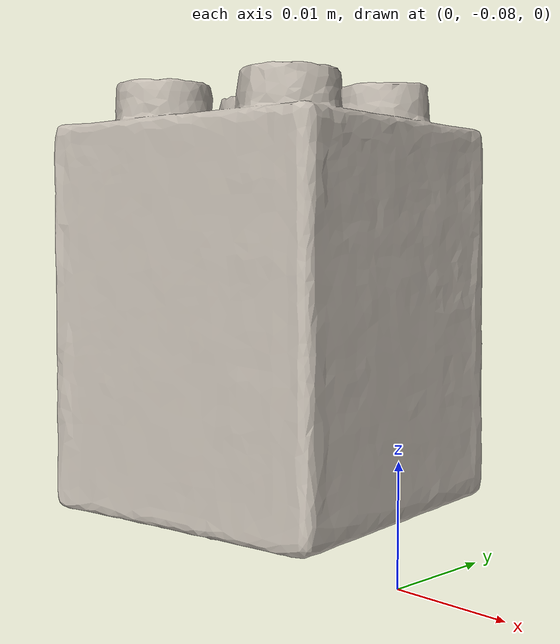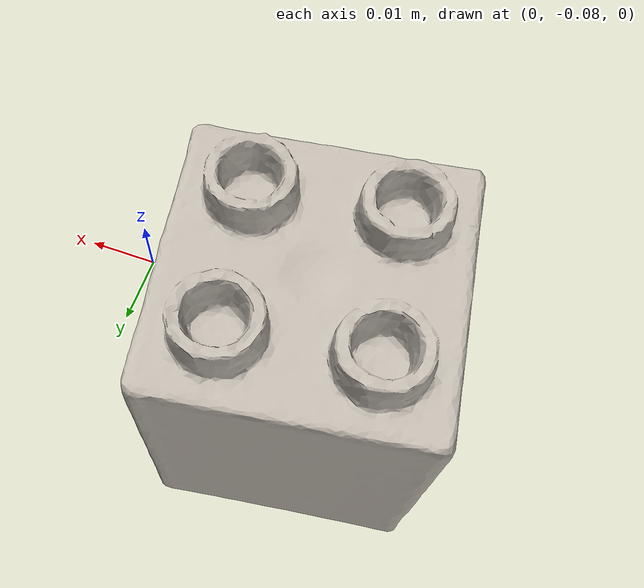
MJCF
<mujoco model="lego_f">
  <compiler angle="radian" meshdir="assets" texturedir="assets"/>
    <default>
        <default class="ycb_col">
            <geom contype="1" class="ycb_col" conaffinity="1" group="3" rgba=".4 .5 .6 1"/>
        </default>
        <default class="ycb_viz">
            <geom contype="0" class="ycb_col" conaffinity="0" type="mesh" mass="0"/>
        </default>
    </default>
  <asset>
    <texture type="2d" name="f_lego_duplo_tex" file="texture_map.png"/>
    <material name="f_lego_duplo_mat" texture="f_lego_duplo_tex" specular="0.5" shininess="0.5"/>
    <mesh file="textured.obj" name="f_lego_duplo"/>
    <mesh file="textured_collision_0.obj" name="f_lego_duplo_collision_0"/>
    <mesh file="textured_collision_1.obj" name="f_lego_duplo_collision_1"/>
    <mesh file="textured_collision_2.obj" name="f_lego_duplo_collision_2"/>
    <mesh file="textured_collision_3.obj" name="f_lego_duplo_collision_3"/>
    <mesh file="textured_collision_4.obj" name="f_lego_duplo_collision_4"/>
    <mesh file="textured_collision_5.obj" name="f_lego_duplo_collision_5"/>
    <mesh file="textured_collision_6.obj" name="f_lego_duplo_collision_6"/>
    <mesh file="textured_collision_7.obj" name="f_lego_duplo_collision_7"/>
    <mesh file="textured_collision_8.obj" name="f_lego_duplo_collision_8"/>
    <mesh file="textured_collision_9.obj" name="f_lego_duplo_collision_9"/>
    <mesh file="textured_collision_10.obj" name="f_lego_duplo_collision_10"/>
    <mesh file="textured_collision_11.obj" name="f_lego_duplo_collision_11"/>
    <mesh file="textured_collision_12.obj" name="f_lego_duplo_collision_12"/>
    <mesh file="textured_collision_13.obj" name="f_lego_duplo_collision_13"/>
    <mesh file="textured_collision_14.obj" name="f_lego_duplo_collision_14"/>
    <mesh file="textured_collision_15.obj" name="f_lego_duplo_collision_15"/>
    <mesh file="textured_collision_16.obj" name="f_lego_duplo_collision_16"/>
    <mesh file="textured_collision_17.obj" name="f_lego_duplo_collision_17"/>
    <mesh file="textured_collision_18.obj" name="f_lego_duplo_collision_18"/>
    <mesh file="textured_collision_19.obj" name="f_lego_duplo_collision_19"/>
  </asset>
  <worldbody>
      <geom material="f_lego_duplo_mat" mesh="f_lego_duplo" class="ycb_viz"/>
      <geom mesh="f_lego_duplo_collision_0" class="ycb_col" conaffinity="1" condim="4" friction="0.1 0.1 0.1" mass="0.0005172781074629612" rgba="1 1 1 1" solimp="0.99 0.99 0.01" solref=".001 0.1" type="mesh" group="3"/>
      <geom mesh="f_lego_duplo_collision_1" class="ycb_col" conaffinity="1" condim="4" friction="0.1 0.1 0.1" mass="0.0004600861917788012" rgba="1 1 1 1" solimp="0.99 0.99 0.01" solref=".001 0.1" type="mesh" group="3"/>
      <geom mesh="f_lego_duplo_collision_2" class="ycb_col" conaffinity="1" condim="4" friction="0.1 0.1 0.1" mass="0.00041785057899003" rgba="1 1 1 1" solimp="0.99 0.99 0.01" solref=".001 0.1" type="mesh" group="3"/>
      <geom mesh="f_lego_duplo_collision_3" class="ycb_col" conaffinity="1" condim="4" friction="0.1 0.1 0.1" mass="0.0004707382037698749" rgba="1 1 1 1" solimp="0.99 0.99 0.01" solref=".001 0.1" type="mesh" group="3"/>
      <geom mesh="f_lego_duplo_collision_4" class="ycb_col" conaffinity="1" condim="4" friction="0.1 0.1 0.1" mass="0.0002733166060480656" rgba="1 1 1 1" solimp="0.99 0.99 0.01" solref=".001 0.1" type="mesh" group="3"/>
      <geom mesh="f_lego_duplo_collision_5" class="ycb_col" conaffinity="1" condim="4" friction="0.1 0.1 0.1" mass="0.00026140029198652704" rgba="1 1 1 1" solimp="0.99 0.99 0.01" solref=".001 0.1" type="mesh" group="3"/>
      <geom mesh="f_lego_duplo_collision_6" class="ycb_col" conaffinity="1" condim="4" friction="0.1 0.1 0.1" mass="0.00026860369012699815" rgba="1 1 1 1" solimp="0.99 0.99 0.01" solref=".001 0.1" type="mesh" group="3"/>
      <geom mesh="f_lego_duplo_collision_7" class="ycb_col" conaffinity="1" condim="4" friction="0.1 0.1 0.1" mass="3.487447436975603e-05" rgba="1 1 1 1" solimp="0.99 0.99 0.01" solref=".001 0.1" type="mesh" group="3"/>
      <geom mesh="f_lego_duplo_collision_8" class="ycb_col" conaffinity="1" condim="4" friction="0.1 0.1 0.1" mass="3.210905300706063e-05" rgba="1 1 1 1" solimp="0.99 0.99 0.01" solref=".001 0.1" type="mesh" group="3"/>
      <geom mesh="f_lego_duplo_collision_9" class="ycb_col" conaffinity="1" condim="4" friction="0.1 0.1 0.1" mass="0.00040449352917629606" rgba="1 1 1 1" solimp="0.99 0.99 0.01" solref=".001 0.1" type="mesh" group="3"/>
      <geom mesh="f_lego_duplo_collision_10" class="ycb_col" conaffinity="1" condim="4" friction="0.1 0.1 0.1" mass="0.0003841477418081576" rgba="1 1 1 1" solimp="0.99 0.99 0.01" solref=".001 0.1" type="mesh" group="3"/>
      <geom mesh="f_lego_duplo_collision_11" class="ycb_col" conaffinity="1" condim="4" friction="0.1 0.1 0.1" mass="0.0002323934332876863" rgba="1 1 1 1" solimp="0.99 0.99 0.01" solref=".001 0.1" type="mesh" group="3"/>
      <geom mesh="f_lego_duplo_collision_12" class="ycb_col" conaffinity="1" condim="4" friction="0.1 0.1 0.1" mass="0.00023102867365745573" rgba="1 1 1 1" solimp="0.99 0.99 0.01" solref=".001 0.1" type="mesh" group="3"/>
      <geom mesh="f_lego_duplo_collision_13" class="ycb_col" conaffinity="1" condim="4" friction="0.1 0.1 0.1" mass="0.0006321139405753827" rgba="1 1 1 1" solimp="0.99 0.99 0.01" solref=".001 0.1" type="mesh" group="3"/>
      <geom mesh="f_lego_duplo_collision_14" class="ycb_col" conaffinity="1" condim="4" friction="0.1 0.1 0.1" mass="0.0002943387185604471" rgba="1 1 1 1" solimp="0.99 0.99 0.01" solref=".001 0.1" type="mesh" group="3"/>
      <geom mesh="f_lego_duplo_collision_15" class="ycb_col" conaffinity="1" condim="4" friction="0.1 0.1 0.1" mass="0.00012395872236406935" rgba="1 1 1 1" solimp="0.99 0.99 0.01" solref=".001 0.1" type="mesh" group="3"/>
      <geom mesh="f_lego_duplo_collision_16" class="ycb_col" conaffinity="1" condim="4" friction="0.1 0.1 0.1" mass="1.1813265166320439e-05" rgba="1 1 1 1" solimp="0.99 0.99 0.01" solref=".001 0.1" type="mesh" group="3"/>
      <geom mesh="f_lego_duplo_collision_17" class="ycb_col" conaffinity="1" condim="4" friction="0.1 0.1 0.1" mass="2.531462613858607e-05" rgba="1 1 1 1" solimp="0.99 0.99 0.01" solref=".001 0.1" type="mesh" group="3"/>
      <geom mesh="f_lego_duplo_collision_18" class="ycb_col" conaffinity="1" condim="4" friction="0.1 0.1 0.1" mass="2.0032908022004636e-05" rgba="1 1 1 1" solimp="0.99 0.99 0.01" solref=".001 0.1" type="mesh" group="3"/>
      <geom mesh="f_lego_duplo_collision_19" class="ycb_col" conaffinity="1" condim="4" friction="0.1 0.1 0.1" mass="2.4107243703519938e-05" rgba="1 1 1 1" solimp="0.99 0.99 0.01" solref=".001 0.1" type="mesh" group="3"/>
  </worldbody>
</mujoco>
